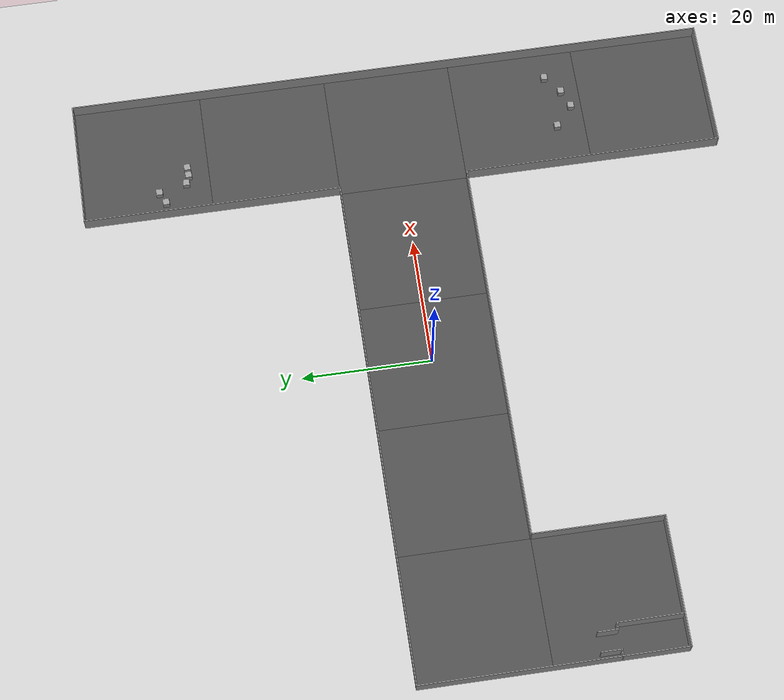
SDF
<sdf version="1.6">
 <world name="default">
  <light name="sun" type="directional">
   <pose>0 0 10 0 -0 0</pose>
   <diffuse>0.8 0.8 0.8 1</diffuse>
   <specular>0.2 0.2 0.2 1</specular>
   <attenuation>
    <range>1000</range>
    <constant>0.9</constant>
    <linear>0.01</linear>
    <quadratic>0.001</quadratic>
   </attenuation>
   <direction>-0.5 0.1 -0.9</direction>
  </light>
  <model name="ground_plane">
   <static>1</static>
   <link name="link">
    <collision name="collision">
     <geometry><plane><normal>0 0 1</normal><size>100 100</size></plane></geometry>
     <surface><friction><ode><mu>100</mu><mu2>50</mu2></ode></friction></surface>
    </collision>
    <visual name="visual">
     <cast_shadows>0</cast_shadows>
     <geometry><plane><normal>0 0 1</normal><size>100 100</size></plane></geometry>
     <material>
      <script><uri>file://media/materials/scripts/gazebo.material</uri><name>Gazebo/Grey</name></script>
     </material>
    </visual>
   </link>
  </model>
  <gravity>0 0 -9.8</gravity>
  <magnetic_field>6e-06 2.3e-05 -4.2e-05</magnetic_field>
  <atmosphere type="adiabatic"/>
  <physics name="default_physics" default="0" type="ode">
   <max_step_size>0.001</max_step_size>
   <real_time_factor>1</real_time_factor>
   <real_time_update_rate>1000</real_time_update_rate>
  </physics>
  <scene><ambient>0.4 0.4 0.4 1</ambient><background>0.7 0.7 0.7 1</background><shadows>1</shadows></scene>
  <audio><device>default</device></audio>
  <spherical_coordinates>
   <surface_model>EARTH_WGS84</surface_model>
   <latitude_deg>0</latitude_deg>
   <longitude_deg>0</longitude_deg>
   <elevation>0</elevation>
   <heading_deg>0</heading_deg>
  </spherical_coordinates>
  <model name="shooting_range_wall">
   <link name="Wall_0">
    <collision name="Wall_0_Collision">
     <geometry><box><size>20.15 0.15 2.5</size></box></geometry>
     <pose>0 0 1.25 0 -0 0</pose>
    </collision>
    <visual name="Wall_0_Visual">
     <pose>0 0 1.25 0 -0 0</pose>
     <geometry><box><size>20.15 0.15 2.5</size></box></geometry>
     <material>
      <script><uri>file://media/materials/scripts/gazebo.material</uri><name>Gazebo/Grey</name></script>
      <ambient>1 1 1 1</ambient>
     </material>
     <meta><layer>0</layer></meta>
    </visual>
    <pose>-40 -30 0 0 -0 0</pose>
   </link>
   <link name="Wall_10">
    <collision name="Wall_10_Collision">
     <geometry><box><size>0.15 0.15 2.5</size></box></geometry>
     <pose>0 0 1.25 0 -0 0</pose>
    </collision>
    <visual name="Wall_10_Visual">
     <pose>0 0 1.25 0 -0 0</pose>
     <geometry><box><size>0.15 0.15 2.5</size></box></geometry>
     <material>
      <script><uri>file://media/materials/scripts/gazebo.material</uri><name>Gazebo/Grey</name></script>
      <ambient>1 1 1 1</ambient>
     </material>
     <meta><layer>0</layer></meta>
    </visual>
    <pose>30 -10 0 0 -0 0</pose>
   </link>
   <link name="Wall_14">
    <collision name="Wall_14_Collision">
     <geometry><box><size>1.15 0.15 2.5</size></box></geometry>
     <pose>0 0 1.25 0 -0 0</pose>
    </collision>
    <visual name="Wall_14_Visual">
     <pose>0 0 1.25 0 -0 0</pose>
     <geometry><box><size>1.15 0.15 2.5</size></box></geometry>
     <material>
      <script><uri>file://media/materials/scripts/gazebo.material</uri><name>Gazebo/Grey</name></script>
      <ambient>1 1 1 1</ambient>
     </material>
     <meta><layer>0</layer></meta>
    </visual>
    <pose>-49.5 -20 0 0 -0 0</pose>
   </link>
   <link name="Wall_15">
    <collision name="Wall_15_Collision">
     <geometry><box><size>1.15 0.15 2.5</size></box></geometry>
     <pose>0 0 1.25 0 -0 0</pose>
    </collision>
    <visual name="Wall_15_Visual">
     <pose>0 0 1.25 0 -0 0</pose>
     <geometry><box><size>1.15 0.15 2.5</size></box></geometry>
     <material>
      <script><uri>file://media/materials/scripts/gazebo.material</uri><name>Gazebo/Grey</name></script>
      <ambient>1 1 1 1</ambient>
     </material>
     <meta><layer>0</layer></meta>
    </visual>
    <pose>-45.5 -20 0 0 -0 0</pose>
   </link>
   <link name="Wall_16">
    <collision name="Wall_16_Collision">
     <geometry><box><size>10.15 0.15 2.5</size></box></geometry>
     <pose>0 0 1.25 0 -0 0</pose>
    </collision>
    <visual name="Wall_16_Visual">
     <pose>0 0 1.25 0 -0 0</pose>
     <geometry><box><size>10.15 0.15 2.5</size></box></geometry>
     <material>
      <script><uri>file://media/materials/scripts/gazebo.material</uri><name>Gazebo/Grey</name></script>
      <ambient>1 1 1 1</ambient>
     </material>
     <meta><layer>0</layer></meta>
    </visual>
    <pose>-45 -25 0 0 -0 -1.5708</pose>
   </link>
   <link name="Wall_17">
    <collision name="Wall_17_Collision">
     <geometry><box><size>3.15 0.15 2.5</size></box></geometry>
     <pose>0 0 1.25 0 -0 0</pose>
    </collision>
    <visual name="Wall_17_Visual">
     <pose>0 0 1.25 0 -0 0</pose>
     <geometry><box><size>3.15 0.15 2.5</size></box></geometry>
     <material>
      <script><uri>file://media/materials/scripts/gazebo.material</uri><name>Gazebo/Grey</name></script>
      <ambient>1 1 1 1</ambient>
     </material>
     <meta><layer>0</layer></meta>
    </visual>
    <pose>-49 -18.5 0 0 -0 -1.5708</pose>
   </link>
   <link name="Wall_18">
    <collision name="Wall_18_Collision">
     <geometry><box><size>3.15 0.15 2.5</size></box></geometry>
     <pose>0 0 1.25 0 -0 0</pose>
    </collision>
    <visual name="Wall_18_Visual">
     <pose>0 0 1.25 0 -0 0</pose>
     <geometry><box><size>3.15 0.15 2.5</size></box></geometry>
     <material>
      <script><uri>file://media/materials/scripts/gazebo.material</uri><name>Gazebo/Grey</name></script>
      <ambient>1 1 1 1</ambient>
     </material>
     <meta><layer>0</layer></meta>
    </visual>
    <pose>-46 -18.5 0 0 -0 -1.5708</pose>
   </link>
   <link name="Wall_11">
    <collision name="Wall_11_Collision">
     <geometry><box><size>60.15 0.15 2.5</size></box></geometry>
     <pose>0 0 1.25 0 -0 0</pose>
    </collision>
    <visual name="Wall_11_Visual">
     <pose>0 0 1.25 0 -0 0</pose>
     <geometry><box><size>60.15 0.15 2.5</size></box></geometry>
     <material>
      <script><uri>file://media/materials/scripts/gazebo.material</uri><name>Gazebo/Grey</name></script>
      <ambient>1 1 1 1</ambient>
     </material>
     <meta><layer>0</layer></meta>
    </visual>
    <pose>-2e-06 -10 0 0 -0 3.14159</pose>
   </link>
   <link name="Wall_13">
    <collision name="Wall_13_Collision">
     <geometry><box><size>20.15 0.15 2.5</size></box></geometry>
     <pose>0 0 1.25 0 -0 0</pose>
    </collision>
    <visual name="Wall_13_Visual">
     <pose>0 0 1.25 0 -0 0</pose>
     <geometry><box><size>20.15 0.15 2.5</size></box></geometry>
     <material>
      <script><uri>file://media/materials/scripts/gazebo.material</uri><name>Gazebo/Grey</name></script>
      <ambient>1 1 1 1</ambient>
     </material>
     <meta><layer>0</layer></meta>
    </visual>
    <pose>-30 -20 0 0 -0 -1.5708</pose>
   </link>
   <link name="Wall_3">
    <collision name="Wall_3_Collision">
     <geometry><box><size>40.15 0.15 2.5</size></box></geometry>
     <pose>0 0 1.25 0 -0 0</pose>
    </collision>
    <visual name="Wall_3_Visual">
     <pose>0 0 1.25 0 -0 0</pose>
     <geometry><box><size>40.15 0.15 2.5</size></box></geometry>
     <material>
      <script><uri>file://media/materials/scripts/gazebo.material</uri><name>Gazebo/Grey</name></script>
      <ambient>1 1 1 1</ambient>
     </material>
     <meta><layer>0</layer></meta>
    </visual>
    <pose>-50 -10 0 0 -0 1.5708</pose>
   </link>
   <link name="Wall_4">
    <collision name="Wall_4_Collision">
     <geometry><box><size>80.15 0.15 2.5</size></box></geometry>
     <pose>0 0 1.25 0 -0 0</pose>
    </collision>
    <visual name="Wall_4_Visual">
     <pose>0 0 1.25 0 -0 0</pose>
     <geometry><box><size>80.15 0.15 2.5</size></box></geometry>
     <material>
      <script><uri>file://media/materials/scripts/gazebo.material</uri><name>Gazebo/Grey</name></script>
      <ambient>1 1 1 1</ambient>
     </material>
     <meta><layer>0</layer></meta>
    </visual>
    <pose>-10 10 0 0 -0 0</pose>
   </link>
   <link name="Wall_5">
    <collision name="Wall_5_Collision">
     <geometry><box><size>40.15 0.15 2.5</size></box></geometry>
     <pose>0 0 1.25 0 -0 0</pose>
    </collision>
    <visual name="Wall_5_Visual">
     <pose>0 0 1.25 0 -0 0</pose>
     <geometry><box><size>40.15 0.15 2.5</size></box></geometry>
     <material>
      <script><uri>file://media/materials/scripts/gazebo.material</uri><name>Gazebo/Grey</name></script>
      <ambient>1 1 1 1</ambient>
     </material>
     <meta><layer>0</layer></meta>
    </visual>
    <pose>30 30 0 0 -0 1.5708</pose>
   </link>
   <link name="Wall_6">
    <collision name="Wall_6_Collision">
     <geometry><box><size>20.15 0.15 2.5</size></box></geometry>
     <pose>0 0 1.25 0 -0 0</pose>
    </collision>
    <visual name="Wall_6_Visual">
     <pose>0 0 1.25 0 -0 0</pose>
     <geometry><box><size>20.15 0.15 2.5</size></box></geometry>
     <material>
      <script><uri>file://media/materials/scripts/gazebo.material</uri><name>Gazebo/Grey</name></script>
      <ambient>1 1 1 1</ambient>
     </material>
     <meta><layer>0</layer></meta>
    </visual>
    <pose>40 50 0 0 -0 0</pose>
   </link>
   <link name="Wall_7">
    <collision name="Wall_7_Collision">
     <geometry><box><size>100.15 0.15 2.5</size></box></geometry>
     <pose>0 0 1.25 0 -0 0</pose>
    </collision>
    <visual name="Wall_7_Visual">
     <pose>0 0 1.25 0 -0 0</pose>
     <geometry><box><size>100.15 0.15 2.5</size></box></geometry>
     <material>
      <script><uri>file://media/materials/scripts/gazebo.material</uri><name>Gazebo/Grey</name></script>
      <ambient>1 1 1 1</ambient>
     </material>
     <meta><layer>0</layer></meta>
    </visual>
    <pose>50 0 0 0 -0 -1.5708</pose>
   </link>
   <link name="Wall_8">
    <collision name="Wall_8_Collision">
     <geometry><box><size>20.15 0.15 2.5</size></box></geometry>
     <pose>0 0 1.25 0 -0 0</pose>
    </collision>
    <visual name="Wall_8_Visual">
     <pose>0 0 1.25 0 -0 0</pose>
     <geometry><box><size>20.15 0.15 2.5</size></box></geometry>
     <material>
      <script><uri>file://media/materials/scripts/gazebo.material</uri><name>Gazebo/Grey</name></script>
      <ambient>1 1 1 1</ambient>
     </material>
     <meta><layer>0</layer></meta>
    </visual>
    <pose>40 -50 0 0 -0 3.14159</pose>
   </link>
   <link name="Wall_9">
    <collision name="Wall_9_Collision">
     <geometry><box><size>40.15 0.15 2.5</size></box></geometry>
     <pose>0 0 1.25 0 -0 0</pose>
    </collision>
    <visual name="Wall_9_Visual">
     <pose>0 0 1.25 0 -0 0</pose>
     <geometry><box><size>40.15 0.15 2.5</size></box></geometry>
     <material>
      <script><uri>file://media/materials/scripts/gazebo.material</uri><name>Gazebo/Grey</name></script>
      <ambient>1 1 1 1</ambient>
     </material>
     <meta><layer>0</layer></meta>
    </visual>
    <pose>30 -30 0 0 -0 1.5708</pose>
   </link>
   <static>1</static>
  </model>
  <model name="asphalt_plane">
   <static>1</static>
   <link name="link">
    <collision name="collision"><geometry><box><size>20 20 0.1</size></box></geometry></collision>
    <visual name="visual">
     <cast_shadows>0</cast_shadows>
     <geometry><box><size>20 20 0.1</size></box></geometry>
     <material>
      <script>
       <uri>model://asphalt_plane/materials/scripts</uri>
       <uri>model://asphalt_plane/materials/textures</uri>
       <name>vrc/asphalt</name>
      </script>
     </material>
    </visual>
   </link>
  </model>
  <model name="asphalt_plane_0">
   <static>1</static>
   <link name="link">
    <collision name="collision"><geometry><box><size>20 20 0.1</size></box></geometry></collision>
    <visual name="visual">
     <cast_shadows>0</cast_shadows>
     <geometry><box><size>20 20 0.1</size></box></geometry>
     <material>
      <script>
       <uri>model://asphalt_plane/materials/scripts</uri>
       <uri>model://asphalt_plane/materials/textures</uri>
       <name>vrc/asphalt</name>
      </script>
     </material>
    </visual>
   </link>
   <pose>-20 0 0 0 -0 0</pose>
  </model>
  <model name="asphalt_plane_1">
   <static>1</static>
   <link name="link">
    <collision name="collision"><geometry><box><size>20 20 0.1</size></box></geometry></collision>
    <visual name="visual">
     <cast_shadows>0</cast_shadows>
     <geometry><box><size>20 20 0.1</size></box></geometry>
     <material>
      <script>
       <uri>model://asphalt_plane/materials/scripts</uri>
       <uri>model://asphalt_plane/materials/textures</uri>
       <name>vrc/asphalt</name>
      </script>
     </material>
    </visual>
   </link>
   <pose>-40 0 0 0 -0 0</pose>
  </model>
  <model name="asphalt_plane_2">
   <static>1</static>
   <link name="link">
    <collision name="collision"><geometry><box><size>20 20 0.1</size></box></geometry></collision>
    <visual name="visual">
     <cast_shadows>0</cast_shadows>
     <geometry><box><size>20 20 0.1</size></box></geometry>
     <material>
      <script>
       <uri>model://asphalt_plane/materials/scripts</uri>
       <uri>model://asphalt_plane/materials/textures</uri>
       <name>vrc/asphalt</name>
      </script>
     </material>
    </visual>
   </link>
   <pose>-40 -20 0 0 -0 0</pose>
  </model>
  <model name="asphalt_plane_3">
   <static>1</static>
   <link name="link">
    <collision name="collision"><geometry><box><size>20 20 0.1</size></box></geometry></collision>
    <visual name="visual">
     <cast_shadows>0</cast_shadows>
     <geometry><box><size>20 20 0.1</size></box></geometry>
     <material>
      <script>
       <uri>model://asphalt_plane/materials/scripts</uri>
       <uri>model://asphalt_plane/materials/textures</uri>
       <name>vrc/asphalt</name>
      </script>
     </material>
    </visual>
   </link>
   <pose>20 0 0 0 -0 0</pose>
  </model>
  <model name="asphalt_plane_4">
   <static>1</static>
   <link name="link">
    <collision name="collision"><geometry><box><size>20 20 0.1</size></box></geometry></collision>
    <visual name="visual">
     <cast_shadows>0</cast_shadows>
     <geometry><box><size>20 20 0.1</size></box></geometry>
     <material>
      <script>
       <uri>model://asphalt_plane/materials/scripts</uri>
       <uri>model://asphalt_plane/materials/textures</uri>
       <name>vrc/asphalt</name>
      </script>
     </material>
    </visual>
   </link>
   <pose>40 40 0 0 -0 0</pose>
  </model>
  <model name="asphalt_plane_5">
   <static>1</static>
   <link name="link">
    <collision name="collision"><geometry><box><size>20 20 0.1</size></box></geometry></collision>
    <visual name="visual">
     <cast_shadows>0</cast_shadows>
     <geometry><box><size>20 20 0.1</size></box></geometry>
     <material>
      <script>
       <uri>model://asphalt_plane/materials/scripts</uri>
       <uri>model://asphalt_plane/materials/textures</uri>
       <name>vrc/asphalt</name>
      </script>
     </material>
    </visual>
   </link>
   <pose>40 20 0 0 -0 0</pose>
  </model>
  <model name="asphalt_plane_6">
   <static>1</static>
   <link name="link">
    <collision name="collision"><geometry><box><size>20 20 0.1</size></box></geometry></collision>
    <visual name="visual">
     <cast_shadows>0</cast_shadows>
     <geometry><box><size>20 20 0.1</size></box></geometry>
     <material>
      <script>
       <uri>model://asphalt_plane/materials/scripts</uri>
       <uri>model://asphalt_plane/materials/textures</uri>
       <name>vrc/asphalt</name>
      </script>
     </material>
    </visual>
   </link>
   <pose>40 0 0 0 -0 0</pose>
  </model>
  <model name="asphalt_plane_7">
   <static>1</static>
   <link name="link">
    <collision name="collision"><geometry><box><size>20 20 0.1</size></box></geometry></collision>
    <visual name="visual">
     <cast_shadows>0</cast_shadows>
     <geometry><box><size>20 20 0.1</size></box></geometry>
     <material>
      <script>
       <uri>model://asphalt_plane/materials/scripts</uri>
       <uri>model://asphalt_plane/materials/textures</uri>
       <name>vrc/asphalt</name>
      </script>
     </material>
    </visual>
   </link>
   <pose>40 -20 0 0 -0 0</pose>
  </model>
  <model name="asphalt_plane_8">
   <static>1</static>
   <link name="link">
    <collision name="collision"><geometry><box><size>20 20 0.1</size></box></geometry></collision>
    <visual name="visual">
     <cast_shadows>0</cast_shadows>
     <geometry><box><size>20 20 0.1</size></box></geometry>
     <material>
      <script>
       <uri>model://asphalt_plane/materials/scripts</uri>
       <uri>model://asphalt_plane/materials/textures</uri>
       <name>vrc/asphalt</name>
      </script>
     </material>
    </visual>
   </link>
   <pose>40 -40 0 0 -0 0</pose>
  </model>
  <model name="unit_box">
   <pose>42.7393 -27.1642 0.55 0 -0 1e-06</pose>
   <link name="link">
    <inertial>
     <mass>1</mass>
     <inertia>
      <ixx>0.166667</ixx>
      <ixy>0</ixy>
      <ixz>0</ixz>
      <iyy>0.166667</iyy>
      <iyz>0</iyz>
      <izz>0.166667</izz>
     </inertia>
    </inertial>
    <collision name="collision"><geometry><box><size>1 1 1</size></box></geometry></collision>
    <visual name="visual">
     <geometry><box><size>1 1 1</size></box></geometry>
     <material>
      <script><name>Gazebo/Grey</name><uri>file://media/materials/scripts/gazebo.material</uri></script>
     </material>
    </visual>
   </link>
  </model>
  <model name="unit_box_0">
   <pose>39.9738 -28.2828 0.55 0 -0 1e-06</pose>
   <link name="link">
    <inertial>
     <mass>1</mass>
     <inertia>
      <ixx>0.166667</ixx>
      <ixy>0</ixy>
      <ixz>0</ixz>
      <iyy>0.166667</iyy>
      <iyz>0</iyz>
      <izz>0.166667</izz>
     </inertia>
    </inertial>
    <collision name="collision"><geometry><box><size>1 1 1</size></box></geometry></collision>
    <visual name="visual">
     <geometry><box><size>1 1 1</size></box></geometry>
     <material>
      <script><name>Gazebo/Grey</name><uri>file://media/materials/scripts/gazebo.material</uri></script>
     </material>
    </visual>
   </link>
  </model>
  <model name="unit_box_1">
   <pose>36.7417 -25.5879 0.55 0 -0 1e-06</pose>
   <link name="link">
    <inertial>
     <mass>1</mass>
     <inertia>
      <ixx>0.166667</ixx>
      <ixy>0</ixy>
      <ixz>0</ixz>
      <iyy>0.166667</iyy>
      <iyz>0</iyz>
      <izz>0.166667</izz>
     </inertia>
    </inertial>
    <collision name="collision"><geometry><box><size>1 1 1</size></box></geometry></collision>
    <visual name="visual">
     <geometry><box><size>1 1 1</size></box></geometry>
     <material>
      <script><name>Gazebo/Grey</name><uri>file://media/materials/scripts/gazebo.material</uri></script>
     </material>
    </visual>
   </link>
  </model>
  <model name="unit_box_2">
   <pose>45.5336 -24.944 0.55 0 -0 1e-06</pose>
   <link name="link">
    <inertial>
     <mass>1</mass>
     <inertia>
      <ixx>0.166667</ixx>
      <ixy>0</ixy>
      <ixz>0</ixz>
      <iyy>0.166667</iyy>
      <iyz>0</iyz>
      <izz>0.166667</izz>
     </inertia>
    </inertial>
    <collision name="collision"><geometry><box><size>1 1 1</size></box></geometry></collision>
    <visual name="visual">
     <geometry><box><size>1 1 1</size></box></geometry>
     <material>
      <script><name>Gazebo/Grey</name><uri>file://media/materials/scripts/gazebo.material</uri></script>
     </material>
    </visual>
   </link>
  </model>
  <model name="unit_box_3">
   <pose>32.219 37.1634 0.55 0 -0 1e-06</pose>
   <link name="link">
    <inertial>
     <mass>1</mass>
     <inertia>
      <ixx>0.166667</ixx>
      <ixy>0</ixy>
      <ixz>0</ixz>
      <iyy>0.166667</iyy>
      <iyz>0</iyz>
      <izz>0.166667</izz>
     </inertia>
    </inertial>
    <collision name="collision"><geometry><box><size>1 1 1</size></box></geometry></collision>
    <visual name="visual">
     <geometry><box><size>1 1 1</size></box></geometry>
     <material>
      <script><name>Gazebo/Grey</name><uri>file://media/materials/scripts/gazebo.material</uri></script>
     </material>
    </visual>
   </link>
  </model>
  <model name="unit_box_4">
   <pose>34.0304 38.0369 0.55 0 -0 1e-06</pose>
   <link name="link">
    <inertial>
     <mass>1</mass>
     <inertia>
      <ixx>0.166667</ixx>
      <ixy>0</ixy>
      <ixz>0</ixz>
      <iyy>0.166667</iyy>
      <iyz>0</iyz>
      <izz>0.166667</izz>
     </inertia>
    </inertial>
    <collision name="collision"><geometry><box><size>1 1 1</size></box></geometry></collision>
    <visual name="visual">
     <geometry><box><size>1 1 1</size></box></geometry>
     <material>
      <script><name>Gazebo/Grey</name><uri>file://media/materials/scripts/gazebo.material</uri></script>
     </material>
    </visual>
   </link>
  </model>
  <model name="unit_box_5">
   <pose>35.1024 33.6806 0.55 0 -0 1e-06</pose>
   <link name="link">
    <inertial>
     <mass>1</mass>
     <inertia>
      <ixx>0.166667</ixx>
      <ixy>0</ixy>
      <ixz>0</ixz>
      <iyy>0.166667</iyy>
      <iyz>0</iyz>
      <izz>0.166667</izz>
     </inertia>
    </inertial>
    <collision name="collision"><geometry><box><size>1 1 1</size></box></geometry></collision>
    <visual name="visual">
     <geometry><box><size>1 1 1</size></box></geometry>
     <material>
      <script><name>Gazebo/Grey</name><uri>file://media/materials/scripts/gazebo.material</uri></script>
     </material>
    </visual>
   </link>
  </model>
  <model name="unit_box_6">
   <pose>36.4326 33.2013 0.55 0 -0 1e-06</pose>
   <link name="link">
    <inertial>
     <mass>1</mass>
     <inertia>
      <ixx>0.166667</ixx>
      <ixy>0</ixy>
      <ixz>0</ixz>
      <iyy>0.166667</iyy>
      <iyz>0</iyz>
      <izz>0.166667</izz>
     </inertia>
    </inertial>
    <collision name="collision"><geometry><box><size>1 1 1</size></box></geometry></collision>
    <visual name="visual">
     <geometry><box><size>1 1 1</size></box></geometry>
     <material>
      <script><name>Gazebo/Grey</name><uri>file://media/materials/scripts/gazebo.material</uri></script>
     </material>
    </visual>
   </link>
  </model>
  <model name="unit_box_7">
   <pose>37.7471 33.2598 0.55 0 -0 1e-06</pose>
   <link name="link">
    <inertial>
     <mass>1</mass>
     <inertia>
      <ixx>0.166667</ixx>
      <ixy>0</ixy>
      <ixz>0</ixz>
      <iyy>0.166667</iyy>
      <iyz>0</iyz>
      <izz>0.166667</izz>
     </inertia>
    </inertial>
    <collision name="collision"><geometry><box><size>1 1 1</size></box></geometry></collision>
    <visual name="visual">
     <geometry><box><size>1 1 1</size></box></geometry>
     <material>
      <script><name>Gazebo/Grey</name><uri>file://media/materials/scripts/gazebo.material</uri></script>
     </material>
    </visual>
   </link>
  </model>
 </world>
</sdf>
